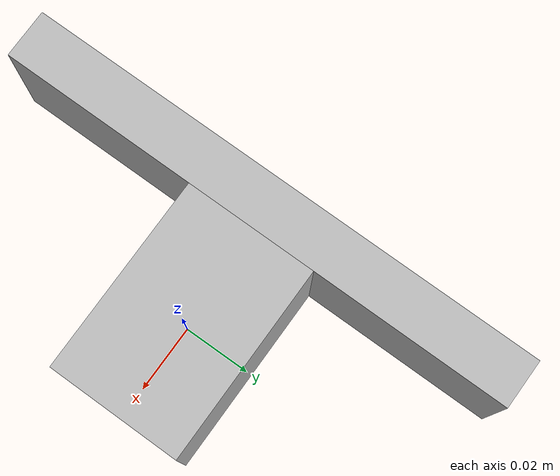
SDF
<?xml version="1.0"?>
<sdf version="1.7">
  <model name="push_t_Tx_control">
    <link name="vertical_link">
      <pose>0.000000 0.000000 0 0 0 0</pose>
      <inertial><mass>0.5</mass>
        <inertia><ixx>0.00013333</ixx><iyy>0.00021335</iyy><izz>0.00021335</izz><ixy>0</ixy><ixz>0</ixz><iyz>0</iyz></inertia></inertial>
      <visual name="vertical_link_visual"><geometry><box><size>0.059333 0.040000 0.040000</size></box></geometry></visual>
      <collision name="vertical_link_collision"><geometry><box><size>0.059333 0.040000 0.040000</size></box></geometry></collision>
      <collision name="c1"><pose>-0.044500 0.080000 -0.020000 0 0 0</pose><geometry><sphere><radius>0.001</radius></sphere></geometry></collision>
      <collision name="c2"><pose>-0.044500 -0.080000 -0.020000 0 0 0</pose><geometry><sphere><radius>0.001</radius></sphere></geometry></collision>
      <collision name="c3"><pose>0.029667 0 -0.020000 0 0 0</pose><geometry><sphere><radius>0.001</radius></sphere></geometry></collision>
    </link>
    <link name="horizontal_link">
      <pose>-0.037083 0.000000 0 0 0 1.5708</pose>
      <inertial><mass>0.5</mass>
        <inertia><ixx>0.00007583</ixx><iyy>0.00113333</iyy><izz>0.00107583</izz><ixy>0</ixy><ixz>0</ixz><iyz>0</iyz></inertia></inertial>
      <visual name="horizontal_link_visual"><geometry><box><size>0.160000 0.014833 0.040000</size></box></geometry></visual>
      <collision name="horizontal_link_collision"><geometry><box><size>0.160000 0.014833 0.040000</size></box></geometry></collision>
    </link>
    <joint name="fixed_joint" type="fixed"><parent>vertical_link</parent><child>horizontal_link</child></joint>
  </model>
</sdf>
